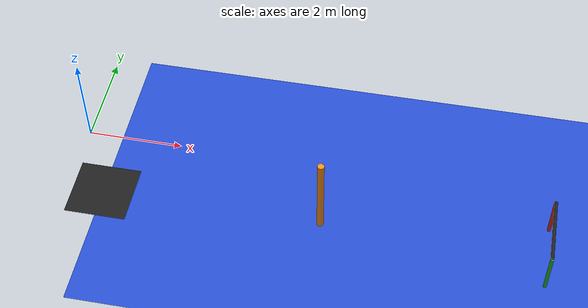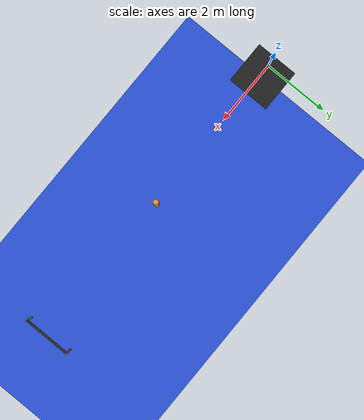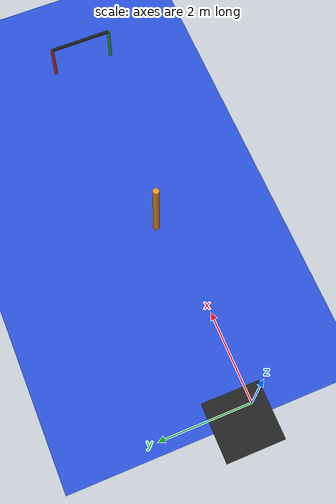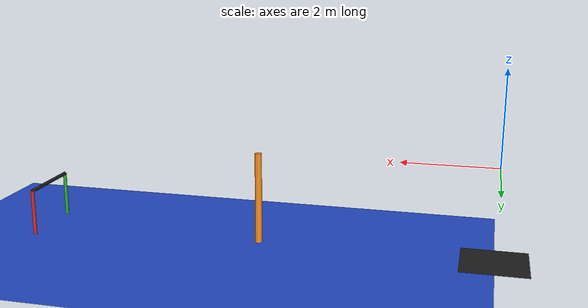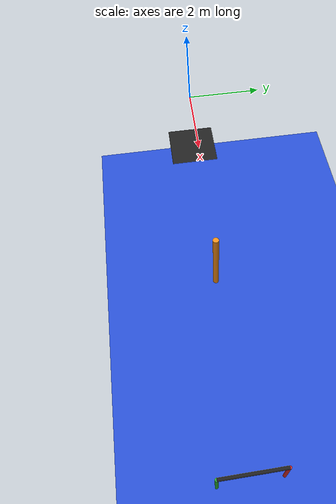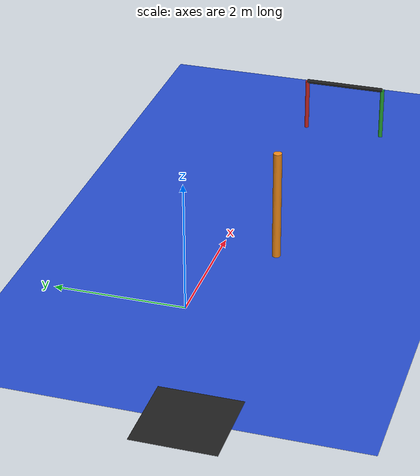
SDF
<?xml version='1.0'?>
<sdf version='1.7'>
  <world name='sauvc_2026_rulebook_dist'>

    <physics name='default_physics' default='true' type='ode'>
      <max_step_size>0.001</max_step_size>
      <real_time_factor>1</real_time_factor>
      <real_time_update_rate>1000</real_time_update_rate>
      <gravity>0 0 0</gravity>
    </physics>

    <scene>
      <ambient>0.4 0.6 0.8 1</ambient>
      <background>0.1 0.2 0.4 1</background>
      <shadows>1</shadows>
      <fog>
        <color>0.1 0.35 0.5 1</color>
        <type>linear</type>
        <start>1.0</start>
        <end>40.0</end>
        <density>0.06</density>
      </fog>
    </scene>

    <light name='sun' type='directional'>
      <cast_shadows>1</cast_shadows>
      <pose>0 0 10 0 -0 0</pose>
      <diffuse>0.8 0.9 1.0 1</diffuse>
      <specular>0.2 0.2 0.2 1</specular>
      <direction>-0.1 0.1 -0.9</direction>
    </light>

    <model name='pool_floor'>
      <static>1</static>
      <pose>30 0 -2 0 0 0</pose>
      <link name='link'>
        <collision name='collision'>
          <geometry><plane><normal>0 0 1</normal><size>60 25</size></plane></geometry>
        </collision>
        <visual name='visual'>
          <geometry><plane><normal>0 0 1</normal><size>60 25</size></plane></geometry>
          <material><script><name>Gazebo/Blue</name></script></material>
        </visual>
      </link>
    </model>

    <model name='start_zone'>
      <static>1</static>
      <pose>0 0 -1.99 0 0 0</pose>
      <link name='link'>
        <visual name='visual'>
          <geometry><plane><normal>0 0 1</normal><size>1.4 1.4</size></plane></geometry>
          <material><script><name>Gazebo/Black</name></script></material>
        </visual>
      </link>
    </model>

    <model name='flare_orange_obstacle'>
      <pose>5.0 0.0 -1.0 0 0 0</pose>
      <static>1</static>
      <link name='link'>
        <visual name='visual'>
          <geometry><cylinder><radius>0.075</radius> <length>2.0</length></cylinder></geometry>
          <material><script><name>Gazebo/Orange</name></script></material>
        </visual>
        <collision name='collision'>
          <geometry><cylinder><radius>0.075</radius> <length>2.0</length></cylinder></geometry>
        </collision>
      </link>
    </model>

    <model name='gate_rulebook'>
      <pose>10.0 0 -1.5 0 0 0</pose> <static>1</static>

      <link name='left_post'>
        <pose>0 0.75 0 0 0 0</pose>
        <visual name='visual'>
          <geometry><cylinder><radius>0.04</radius> <length>1.0</length></cylinder></geometry>
          <material><script><name>Gazebo/Red</name></script></material>
        </visual>
        <collision name='collision'><geometry><cylinder><radius>0.04</radius> <length>1.0</length></cylinder></geometry></collision>
      </link>

      <link name='right_post'>
        <pose>0 -0.75 0 0 0 0</pose>
        <visual name='visual'>
          <geometry><cylinder><radius>0.04</radius> <length>1.0</length></cylinder></geometry>
          <material><script><name>Gazebo/Green</name></script></material>
        </visual>
        <collision name='collision'><geometry><cylinder><radius>0.04</radius> <length>1.0</length></cylinder></geometry></collision>
      </link>

      <link name='top_bar'>
        <pose>0 0 0.5 1.5708 0 0</pose>
        <visual name='visual'>
          <geometry><cylinder><radius>0.04</radius> <length>1.5</length></cylinder></geometry>
          <material><script><name>Gazebo/Black</name></script></material>
        </visual>
        <collision name='collision'><geometry><cylinder><radius>0.04</radius> <length>1.5</length></cylinder></geometry></collision>
      </link>
    </model>

  </world>
</sdf>
